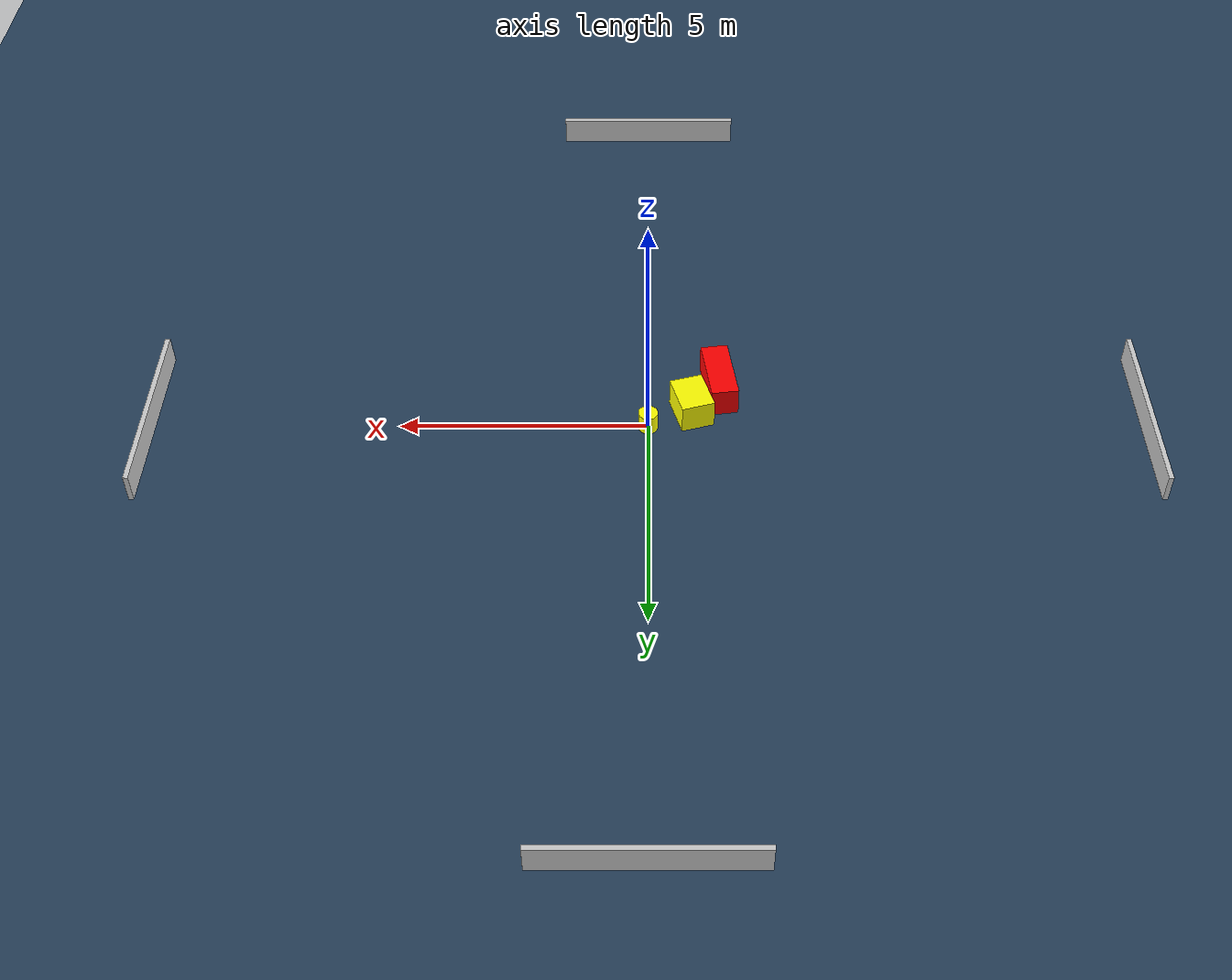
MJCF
<?xml version="1.0" ?>
<mujoco model="generated_environment">
  <option timestep="0.01" integrator="RK4" cone="elliptic"/>
  <default>
    <geom density="1"/>
  </default>
  <asset>
    <texture builtin="gradient" height="3072" name="skybox" rgb1="0.3 0.5 0.7" rgb2="0 0 0" type="skybox" width="512"/>
    <texture builtin="checker" height="300" name="groundplane" rgb1="0.2 0.3 0.4" rgb2="0.1 0.2 0.3" type="2d" width="300"/>
    <material name="groundplane" reflectance="0.2" texrepeat="5 5" texture="groundplane"/>
  </asset>
  <worldbody>
    <light dir="0 0 -1" directional="true" pos="0 0 1.5"/>
    <geom condim="3" friction="0.5 0.005 0.001" material="groundplane" name="floor" pos="0 0 0" size="0 0 0.05" type="plane"/>
    <body name="walls">
      <geom name="wall_1" condim="4" pos="-10.0 0.0 0.3" rgba="0.800000011920929 0.800000011920929 0.800000011920929 1.0" size="0.05 2.0 0.3" type="box"/>
      <geom name="wall_2" condim="4" pos="10.0 0.0 0.3" rgba="0.800000011920929 0.800000011920929 0.800000011920929 1.0" size="0.05 2.0 0.3" type="box"/>
      <geom name="wall_3" condim="4" pos="0.0 -10.0 0.3" rgba="0.800000011920929 0.800000011920929 0.800000011920929 1.0" size="2.0 0.05 0.3" type="box"/>
      <geom name="wall_4" condim="4" pos="0.0 10.0 0.3" rgba="0.800000011920929 0.800000011920929 0.800000011920929 1.0" size="2.0 0.05 0.3" type="box"/>
    </body>
    <body name="robot">
      <joint name="joint_x" type="slide" pos="0 0 0" axis="1 0 0"/>
      <joint name="joint_y" type="slide" pos="0 0 0" axis="0 1 0"/>
      <geom name="robot" type="cylinder" pos="0.0 0.0 0.2" size="0.2 0.2 0.0" mass="5.0" friction="1.0 0.005 0.0001" condim="4" rgba="1.0 1.0 0.0 1.0"/>
    </body>
    <body name="obstacle_1_movable">
      <geom name="obstacle_1_movable" condim="4" pos="-0.8818144673645963 -0.3921360372235949 0.3" euler="0 0 16.41577441150323" friction="0.0 0.005 0.001" rgba="1.0 1.0 0.0 1.0" size="0.33966621334788494 0.4372157169683824 0.3" type="box" mass="0.1"/>
      <joint type="free"/>
    </body>
    <body name="obstacle_2_static">
      <geom name="obstacle_2_static" condim="4" pos="-1.4554669330026717 -1.0784501645873208 0.3" euler="0 0 188.04786184289702" friction="0.0 0.005 0.001" rgba="1.0 0.0 0.0 1.0" size="0.27778925564130796 0.6969591026019536 0.3" type="box"/>
    </body>
  </worldbody>
  <actuator>
    <motor name="actuator_x" joint="joint_x" gear="1" ctrlrange="-1 1"/>
    <motor name="actuator_y" joint="joint_y" gear="1" ctrlrange="-1 1"/>
  </actuator>
</mujoco>
